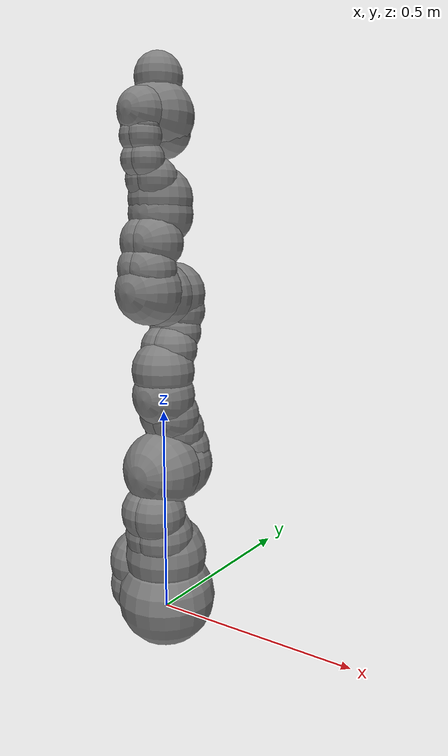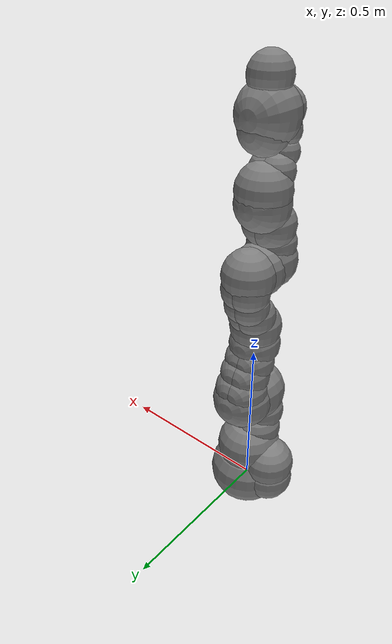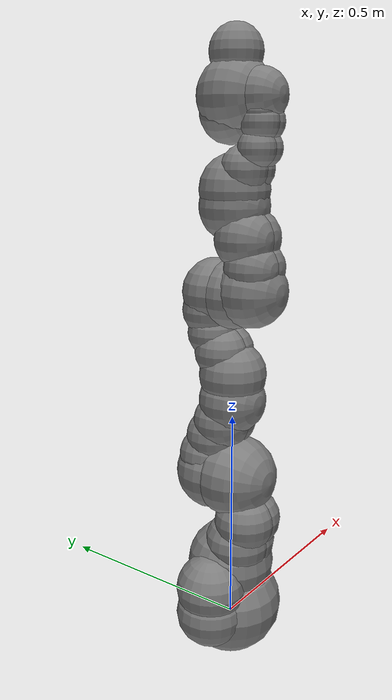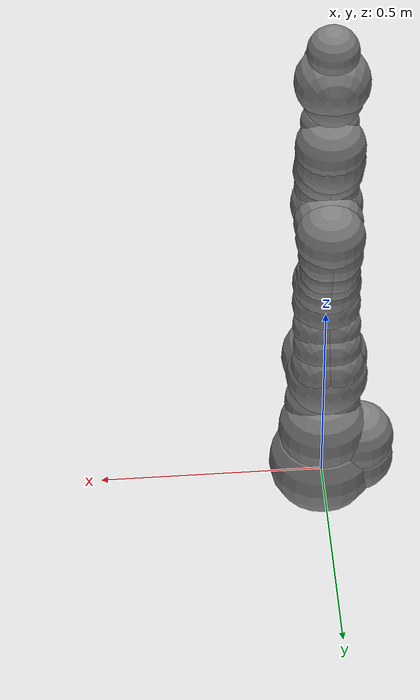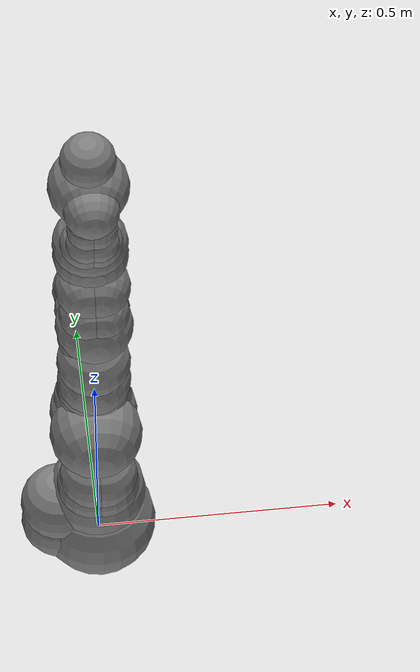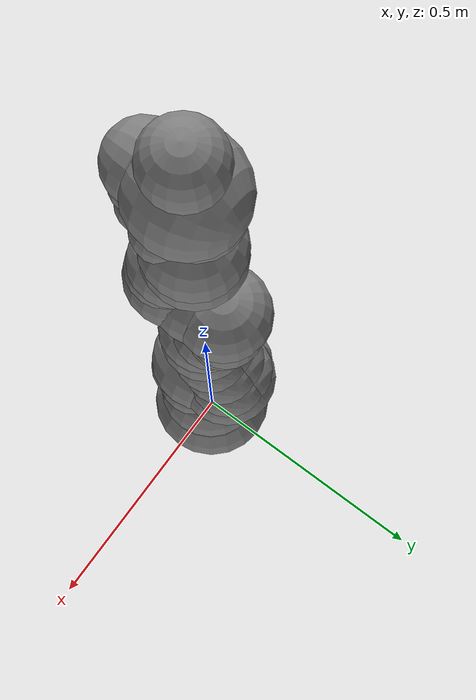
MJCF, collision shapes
<mujoco model="iiwa14">
  <compiler angle="radian" meshdir="assets" autolimits="true"/>

  <default>
    <default class="iiwa">
      <joint axis="0 0 1"/>
      <default class="visual">
        <geom type="mesh" contype="0" conaffinity="0" group="2" material="gray"/>
      </default>
      <default class="collision">
        <geom group="3"/>
      </default>
      <site size="0.001" rgba="1 0 0 1" group="4"/>
    </default>
  </default>

  <asset>
    <material class="iiwa" name="gray" rgba="0.4 0.4 0.4 1"/>
    <material class="iiwa" name="light_gray" rgba="0.6 0.6 0.6 1"/>
    <material class="iiwa" name="black" rgba="0 0 0 1"/>
    <material class="iiwa" name="orange" rgba="1 0.423529 0.0392157 1"/>

    <mesh file="link_0.obj"/>
    <mesh file="link_1.obj"/>
    <mesh file="link_2_orange.obj"/>
    <mesh file="link_2_grey.obj"/>
    <mesh file="link_3.obj"/>
    <mesh file="band.obj"/>
    <mesh file="kuka.obj"/>
    <mesh file="link_4_orange.obj"/>
    <mesh file="link_4_grey.obj"/>
    <mesh file="link_5.obj"/>
    <mesh file="link_6_orange.obj"/>
    <mesh file="link_6_grey.obj"/>
    <mesh file="link_7.obj"/>
  </asset>

  <worldbody>
    <body name="base" childclass="iiwa">
      <inertial mass="5" pos="-0.1 0 0.07" diaginertia="0.05 0.06 0.03"/>
      <geom class="visual" mesh="link_0"/>
      <geom name="base_1_collision" class="collision" size="0.12" pos="0 0 0.03"/>
      <geom name="base_2_collision" class="collision" size="0.08" pos="-0.08 0 0.103"/>
      <geom name="base_3_collision" class="collision" size="0.08" pos="-0.08 0 0.04"/>
      <geom name="base_4_collision" class="collision" size="0.1" pos="0 0 0.14"/>
      <body name="link1" pos="0 0 0.1575">
        <inertial mass="5.76" pos="0 -0.03 0.12" diaginertia="0.0333 0.033 0.0123"/>
        <joint name="joint1" range="-2.96706 2.96706"/>
        <geom class="visual" mesh="link_1"/>
        <geom name="link1_1_collision" class="collision" size="0.08" pos="0 0 -0.0005"/>
        <geom name="link1_2_collision" class="collision" size="0.075" pos="0.01 -0.025 0.0425"/>
        <geom name="link1_3_collision" class="collision" size="0.075" pos="-0.01 -0.025 0.0425"/>
        <geom name="link1_4_collision" class="collision" size="0.07" pos="0.01 -0.045 0.1025"/>
        <geom name="link1_5_collision" class="collision" size="0.07" pos="-0.01 -0.045 0.1025"/>
        <body name="link2" pos="0 0 0.2025" quat="0 0 1 1">
          <inertial mass="6.35" pos="0.0003 0.059 0.042" diaginertia="0.0305 0.0304 0.011" quat="0 0 1 1"/>
          <joint name="joint2" range="-2.0944 2.0944"/>
          <geom class="visual" material="orange" mesh="link_2_orange"/>
          <geom class="visual" mesh="link_2_grey"/>
          <geom name="link2_1_collision" class="collision" size="0.095" pos="0 0 -0.01"/>
          <geom name="link2_2_collision" class="collision" size="0.09" pos="0 0 0.045"/>
          <geom name="link2_3_collision" class="collision" size="0.07" pos="-0.01 0.04 0.054"/>
          <geom name="link2_4_collision" class="collision" size="0.065" pos="-0.01 0.09 0.04"/>
          <geom name="link2_5_collision" class="collision" size="0.065" pos="-0.01 0.13 0.02"/>
          <geom name="link2_6_collision" class="collision" size="0.07" pos="0.01 0.04 0.054"/>
          <geom name="link2_7_collision" class="collision" size="0.065" pos="0.01 0.09 0.04"/>
          <geom name="link2_8_collision" class="collision" size="0.065" pos="0.01 0.13 0.02"/>
          <geom name="link2_9_collision" class="collision" size="0.075" pos="0 0.18 0"/>
          <body name="link3" pos="0 0.2045 0" quat="0 0 1 1">
            <inertial mass="3.5" pos="0 0.03 0.13" diaginertia="0.025 0.0238 0.0076"/>
            <joint name="joint3" range="-2.96706 2.96706"/>
            <geom class="visual" mesh="link_3"/>
            <geom class="visual" material="light_gray" mesh="band"/>
            <geom class="visual" material="black" mesh="kuka"/>
            <geom name="link3_1_collision" class="collision" size="0.075" pos="0 0 0.0355"/>
            <geom name="link3_2_collision" class="collision" size="0.06" pos="0.01 0.023 0.0855"/>
            <geom name="link3_3_collision" class="collision" size="0.055" pos="0.01 0.048 0.1255"/>
            <geom name="link3_4_collision" class="collision" size="0.06" pos="0.01 0.056 0.1755"/>
            <geom name="link3_5_collision" class="collision" size="0.06" pos="-0.01 0.023 0.0855"/>
            <geom name="link3_6_collision" class="collision" size="0.055" pos="-0.01 0.048 0.1255"/>
            <geom name="link3_7_collision" class="collision" size="0.06" pos="-0.01 0.056 0.1755"/>
            <geom name="link3_8_collision" class="collision" size="0.075" pos="0 0.045 0.2155"/>
            <geom name="link3_9_collision" class="collision" size="0.075" pos="0 0 0.2155"/>
            <body name="link4" pos="0 0 0.2155" quat="1 1 0 0">
              <inertial mass="3.5" pos="0 0.067 0.034" diaginertia="0.017 0.0164 0.006" quat="1 1 0 0"/>
              <joint name="joint4" range="-2.0944 2.0944"/>
              <geom class="visual" material="orange" mesh="link_4_orange"/>
              <geom class="visual" mesh="link_4_grey"/>
              <geom name="link4_1_collision" class="collision" size="0.078" pos="0 0.01 0.046"/>
              <geom name="link4_2_collision" class="collision" size="0.06" pos="0.01 0.06 0.052"/>
              <geom name="link4_3_collision" class="collision" size="0.065" pos="0.01 0.12 0.034"/>
              <geom name="link4_4_collision" class="collision" size="0.06" pos="-0.01 0.06 0.052"/>
              <geom name="link4_5_collision" class="collision" size="0.065" pos="-0.01 0.12 0.034"/>
              <geom name="link4_6_collision" class="collision" size="0.075" pos="0 0.184 0"/>
              <body name="link5" pos="0 0.1845 0" quat="0 0 1 1">
                <inertial mass="3.5" pos="0.0001 0.021 0.076" diaginertia="0.01 0.0087 0.00449"/>
                <joint name="joint5" range="-2.96706 2.96706"/>
                <geom class="visual" mesh="link_5"/>
                <geom class="visual" material="light_gray" mesh="band"/>
                <geom class="visual" material="black" mesh="kuka"/>
                <geom name="link5_1_collision" class="collision" size="0.075" pos="0 0 0.0335"/>
                <geom name="link5_2_collision" class="collision" size="0.05" pos="-0.012 0.031 0.0755"/>
                <geom name="link5_3_collision" class="collision" size="0.05" pos="0.012 0.031 0.0755"/>
                <geom name="link5_4_collision" class="collision" size="0.04" pos="-0.012 0.06 0.1155"/>
                <geom name="link5_5_collision" class="collision" size="0.04" pos="0.012 0.06 0.1155"/>
                <geom name="link5_6_collision" class="collision" size="0.04" pos="-0.01 0.065 0.1655"/>
                <geom name="link5_7_collision" class="collision" size="0.04" pos="0.01 0.065 0.1655"/>
                <geom name="link5_8_collision" class="collision" size="0.035" pos="-0.012 0.065 0.1855"/>
                <geom name="link5_9_collision" class="collision" size="0.035" pos="0.012 0.065 0.1855"/>
                <body name="link6" pos="0 0 0.2155" quat="1 1 0 0">
                  <inertial mass="1.8" pos="0 0.0006 0.0004" diaginertia="0.0049 0.0047 0.0036" quat="1 1 0 0"/>
                  <joint name="joint6" range="-2.0944 2.0944"/>
                  <geom class="visual" material="orange" mesh="link_6_orange"/>
                  <geom class="visual" mesh="link_6_grey"/>
                  <geom name="link6_1_collision" class="collision" size="0.055" pos="0 0 -0.059"/>
                  <geom name="link6_2_collision" class="collision" size="0.065" pos="0 -0.03 0.011"/>
                  <geom name="link6_3_collision" class="collision" size="0.08"/>
                  <body name="link7" pos="0 0.081 0" quat="0 0 1 1">
                    <inertial mass="1.2" pos="0 0 0.02" diaginertia="0.001 0.001 0.001"/>
                    <joint name="joint7" range="-3.05433 3.05433"/>
                    <geom class="visual" mesh="link_7"/>
                    <geom name="link7_collision" class="collision" size="0.055" pos="0 0 0.001"/>
                    <site pos="0 0 0.045" name="attachment_site"/>
                  </body>
                </body>
              </body>
            </body>
          </body>
        </body>
      </body>
    </body>
  </worldbody>

  <contact>
    <exclude body1="base" body2="link1"/>
    <exclude body1="base" body2="link2"/>
    <exclude body1="base" body2="link3"/>
    <exclude body1="link1" body2="link3"/>
    <exclude body1="link3" body2="link5"/>
    <exclude body1="link4" body2="link7"/>
    <exclude body1="link5" body2="link7"/>
  </contact>
</mujoco>
